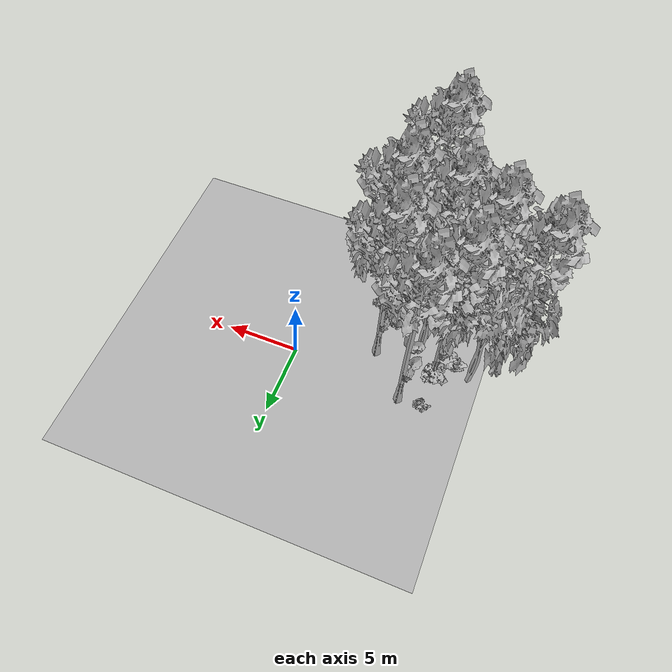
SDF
<sdf version="1.7">
 <world name="default">
  <model name="ground_plane">
   <static>1</static>
   <link name="link">
    <collision name="collision">
     <pose>-50 0 0 0 -0 0</pose>
     <geometry><plane><normal>0 0 1</normal><size>80 80</size></plane></geometry>
     <surface><contact><ode><min_depth>0.01</min_depth><max_vel>0</max_vel></ode></contact></surface>
    </collision>
    <visual name="grass">
     <cast_shadows>0</cast_shadows>
     <geometry>
      <mesh>
       <scale>0.46714285714285714 0.46714285714285714 0.1</scale>
       <uri>file://grass_plane/meshes/grass_plane.dae</uri>
      </mesh>
     </geometry>
    </visual>
   </link>
  </model>
  <model name="Tree 7">
   <static>1</static>
   <pose>-4.427250663453513 -5.980754278815311 0 1.57079 -0 0</pose>
   <link name="link">
    <collision name="collision">
     <geometry><mesh><scale>3.5 5 3.5</scale><uri>model://tree_9/meshes/tree_9.obj</uri></mesh></geometry>
    </collision>
    <visual name="visual">
     <geometry><mesh><scale>3.5 5 3.5</scale><uri>model://tree_9/meshes/tree_9.obj</uri></mesh></geometry>
    </visual>
   </link>
  </model>
  <model name="Tree 16">
   <static>1</static>
   <pose>-5.256447903502242 -5.490356725233795 0 1.57079 -0 0</pose>
   <link name="link">
    <collision name="collision">
     <geometry><mesh><scale>3.5 5 3.5</scale><uri>model://tree_2/meshes/tree_2.obj</uri></mesh></geometry>
    </collision>
    <visual name="visual">
     <geometry><mesh><scale>3.5 5 3.5</scale><uri>model://tree_2/meshes/tree_2.obj</uri></mesh></geometry>
    </visual>
   </link>
  </model>
  <model name="Tree 62">
   <static>1</static>
   <pose>-11.878132342739143 -2.3005812666337135 0 1.57079 -0 0</pose>
   <link name="link">
    <collision name="collision">
     <geometry><mesh><scale>3.5 5 3.5</scale><uri>model://tree_2/meshes/tree_2.obj</uri></mesh></geometry>
    </collision>
    <visual name="visual">
     <geometry><mesh><scale>3.5 5 3.5</scale><uri>model://tree_2/meshes/tree_2.obj</uri></mesh></geometry>
    </visual>
   </link>
  </model>
  <model name="Tree 73">
   <static>1</static>
   <pose>-9.478943195744403 -1.369140072293746 0 1.57079 -0 0</pose>
   <link name="link">
    <collision name="collision">
     <geometry><mesh><scale>3.5 5 3.5</scale><uri>model://tree_9/meshes/tree_9.obj</uri></mesh></geometry>
    </collision>
    <visual name="visual">
     <geometry><mesh><scale>3.5 5 3.5</scale><uri>model://tree_9/meshes/tree_9.obj</uri></mesh></geometry>
    </visual>
   </link>
  </model>
  <model name="Tree 166">
   <static>1</static>
   <pose>-10.228149432949753 -5.006016270019629 0 1.57079 -0 0</pose>
   <link name="link">
    <collision name="collision">
     <geometry><mesh><scale>3.5 5 3.5</scale><uri>model://tree_9/meshes/tree_9.obj</uri></mesh></geometry>
    </collision>
    <visual name="visual">
     <geometry><mesh><scale>3.5 5 3.5</scale><uri>model://tree_9/meshes/tree_9.obj</uri></mesh></geometry>
    </visual>
   </link>
  </model>
  <model name="Tree 221">
   <static>1</static>
   <pose>-13.35834579024992 -3.9304921222661093 0 1.57079 -0 0</pose>
   <link name="link">
    <collision name="collision">
     <geometry><mesh><scale>3.5 5 3.5</scale><uri>model://tree_9/meshes/tree_9.obj</uri></mesh></geometry>
    </collision>
    <visual name="visual">
     <geometry><mesh><scale>3.5 5 3.5</scale><uri>model://tree_9/meshes/tree_9.obj</uri></mesh></geometry>
    </visual>
   </link>
  </model>
  <model name="Tree 235">
   <static>1</static>
   <pose>-7.824362509094527 1.0120601404986544 0 1.57079 -0 0</pose>
   <link name="link">
    <collision name="collision">
     <geometry><mesh><scale>3.5 5 3.5</scale><uri>model://tree_9/meshes/tree_9.obj</uri></mesh></geometry>
    </collision>
    <visual name="visual">
     <geometry><mesh><scale>3.5 5 3.5</scale><uri>model://tree_9/meshes/tree_9.obj</uri></mesh></geometry>
    </visual>
   </link>
  </model>
  <model name="Tree 247">
   <static>1</static>
   <pose>-5.281650814542118 -1.921821378134105 0 1.57079 -0 0</pose>
   <link name="link">
    <collision name="collision">
     <geometry><mesh><scale>3.5 5 3.5</scale><uri>model://tree_9/meshes/tree_9.obj</uri></mesh></geometry>
    </collision>
    <visual name="visual">
     <geometry><mesh><scale>3.5 5 3.5</scale><uri>model://tree_9/meshes/tree_9.obj</uri></mesh></geometry>
    </visual>
   </link>
  </model>
  <model name="Tree 323">
   <static>1</static>
   <pose>-5.732596181707635 -11.236471091609587 0 1.57079 -0 0</pose>
   <link name="link">
    <collision name="collision">
     <geometry><mesh><scale>3.5 5 3.5</scale><uri>model://tree_9/meshes/tree_9.obj</uri></mesh></geometry>
    </collision>
    <visual name="visual">
     <geometry><mesh><scale>3.5 5 3.5</scale><uri>model://tree_9/meshes/tree_9.obj</uri></mesh></geometry>
    </visual>
   </link>
  </model>
  <model name="Tree 429">
   <static>1</static>
   <pose>-8.117793601955661 -3.190508060046625 0 1.57079 -0 0</pose>
   <link name="link">
    <collision name="collision">
     <geometry><mesh><scale>3.5 5 3.5</scale><uri>model://tree_2/meshes/tree_2.obj</uri></mesh></geometry>
    </collision>
    <visual name="visual">
     <geometry><mesh><scale>3.5 5 3.5</scale><uri>model://tree_2/meshes/tree_2.obj</uri></mesh></geometry>
    </visual>
   </link>
  </model>
  <model name="Tree 455">
   <static>1</static>
   <pose>-6.465772513158591 -9.074687895939277 0 1.57079 -0 0</pose>
   <link name="link">
    <collision name="collision">
     <geometry><mesh><scale>3.5 5 3.5</scale><uri>model://tree_2/meshes/tree_2.obj</uri></mesh></geometry>
    </collision>
    <visual name="visual">
     <geometry><mesh><scale>3.5 5 3.5</scale><uri>model://tree_2/meshes/tree_2.obj</uri></mesh></geometry>
    </visual>
   </link>
  </model>
  <model name="Tree 624">
   <static>1</static>
   <pose>-7.707575341597728 -5.809129788653216 0 1.57079 -0 0</pose>
   <link name="link">
    <collision name="collision">
     <geometry><mesh><scale>3.5 5 3.5</scale><uri>model://tree_9/meshes/tree_9.obj</uri></mesh></geometry>
    </collision>
    <visual name="visual">
     <geometry><mesh><scale>3.5 5 3.5</scale><uri>model://tree_9/meshes/tree_9.obj</uri></mesh></geometry>
    </visual>
   </link>
  </model>
  <model name="Bush 96">
   <static>1</static>
   <pose>-4.195050595715379 -5.986618700486744 0 1.57079 -0 0</pose>
   <link name="link">
    <collision name="collision">
     <geometry><mesh><scale>2 2 2</scale><uri>model://bush_2/meshes/bush_2.obj</uri></mesh></geometry>
     <surface><contact><collide_without_contact>false</collide_without_contact></contact></surface>
    </collision>
    <visual name="visual">
     <geometry><mesh><scale>2 2 2</scale><uri>model://bush_2/meshes/bush_2.obj</uri></mesh></geometry>
    </visual>
   </link>
  </model>
  <model name="Bush 99">
   <static>1</static>
   <pose>-12.676304408764203 -6.453361128359006 0 1.57079 -0 0</pose>
   <link name="link">
    <collision name="collision">
     <geometry><mesh><scale>2 2 2</scale><uri>model://bush_2/meshes/bush_2.obj</uri></mesh></geometry>
     <surface><contact><collide_without_contact>false</collide_without_contact></contact></surface>
    </collision>
    <visual name="visual">
     <geometry><mesh><scale>2 2 2</scale><uri>model://bush_2/meshes/bush_2.obj</uri></mesh></geometry>
    </visual>
   </link>
  </model>
  <model name="Bush 232">
   <static>1</static>
   <pose>-10.59928406244158 -2.553019612180492 0 1.57079 -0 0</pose>
   <link name="link">
    <collision name="collision">
     <geometry><mesh><scale>2 2 2</scale><uri>model://bush_0/meshes/bush_0.obj</uri></mesh></geometry>
     <surface><contact><collide_without_contact>false</collide_without_contact></contact></surface>
    </collision>
    <visual name="visual">
     <geometry><mesh><scale>2 2 2</scale><uri>model://bush_0/meshes/bush_0.obj</uri></mesh></geometry>
    </visual>
   </link>
  </model>
  <model name="Bush 237">
   <static>1</static>
   <pose>-9.878400222145778 -5.210732732472955 0 1.57079 -0 0</pose>
   <link name="link">
    <collision name="collision">
     <geometry><mesh><scale>2 2 2</scale><uri>model://bush_2/meshes/bush_2.obj</uri></mesh></geometry>
     <surface><contact><collide_without_contact>false</collide_without_contact></contact></surface>
    </collision>
    <visual name="visual">
     <geometry><mesh><scale>2 2 2</scale><uri>model://bush_2/meshes/bush_2.obj</uri></mesh></geometry>
    </visual>
   </link>
  </model>
  <model name="Bush 298">
   <static>1</static>
   <pose>-6.280540580521233 -7.425189872461075 0 1.57079 -0 0</pose>
   <link name="link">
    <collision name="collision">
     <geometry><mesh><scale>2 2 2</scale><uri>model://bush_2/meshes/bush_2.obj</uri></mesh></geometry>
     <surface><contact><collide_without_contact>false</collide_without_contact></contact></surface>
    </collision>
    <visual name="visual">
     <geometry><mesh><scale>2 2 2</scale><uri>model://bush_2/meshes/bush_2.obj</uri></mesh></geometry>
    </visual>
   </link>
  </model>
  <model name="Bush 373">
   <static>1</static>
   <pose>-5.8443499723510755 -4.756697664507712 0 1.57079 -0 0</pose>
   <link name="link">
    <collision name="collision">
     <geometry><mesh><scale>2 2 2</scale><uri>model://bush_2/meshes/bush_2.obj</uri></mesh></geometry>
     <surface><contact><collide_without_contact>false</collide_without_contact></contact></surface>
    </collision>
    <visual name="visual">
     <geometry><mesh><scale>2 2 2</scale><uri>model://bush_2/meshes/bush_2.obj</uri></mesh></geometry>
    </visual>
   </link>
  </model>
  <model name="Bush 417">
   <static>1</static>
   <pose>-9.410212553623044 0.810018239053214 0 1.57079 -0 0</pose>
   <link name="link">
    <collision name="collision">
     <geometry><mesh><scale>2 2 2</scale><uri>model://bush_2/meshes/bush_2.obj</uri></mesh></geometry>
     <surface><contact><collide_without_contact>false</collide_without_contact></contact></surface>
    </collision>
    <visual name="visual">
     <geometry><mesh><scale>2 2 2</scale><uri>model://bush_2/meshes/bush_2.obj</uri></mesh></geometry>
    </visual>
   </link>
  </model>
  <model name="Bush 481">
   <static>1</static>
   <pose>-9.570572329642808 -1.4978241279565339 0 1.57079 -0 0</pose>
   <link name="link">
    <collision name="collision">
     <geometry><mesh><scale>2 2 2</scale><uri>model://bush_1/meshes/bush_1.obj</uri></mesh></geometry>
     <surface><contact><collide_without_contact>false</collide_without_contact></contact></surface>
    </collision>
    <visual name="visual">
     <geometry><mesh><scale>2 2 2</scale><uri>model://bush_1/meshes/bush_1.obj</uri></mesh></geometry>
    </visual>
   </link>
  </model>
  <model name="Bush 517">
   <static>1</static>
   <pose>-5.379197162682416 -4.600444519264869 0 1.57079 -0 0</pose>
   <link name="link">
    <collision name="collision">
     <geometry><mesh><scale>2 2 2</scale><uri>model://bush_4/meshes/bush_4.obj</uri></mesh></geometry>
     <surface><contact><collide_without_contact>false</collide_without_contact></contact></surface>
    </collision>
    <visual name="visual">
     <geometry><mesh><scale>2 2 2</scale><uri>model://bush_4/meshes/bush_4.obj</uri></mesh></geometry>
    </visual>
   </link>
  </model>
  <model name="Bush 529">
   <static>1</static>
   <pose>-14.001157427321367 -7.637646633225202 0 1.57079 -0 0</pose>
   <link name="link">
    <collision name="collision">
     <geometry><mesh><scale>2 2 2</scale><uri>model://bush_5/meshes/bush_5.obj</uri></mesh></geometry>
     <surface><contact><collide_without_contact>false</collide_without_contact></contact></surface>
    </collision>
    <visual name="visual">
     <geometry><mesh><scale>2 2 2</scale><uri>model://bush_5/meshes/bush_5.obj</uri></mesh></geometry>
    </visual>
   </link>
  </model>
  <model name="Bush 571">
   <static>1</static>
   <pose>-5.797974007055544 -7.563480327089991 0 1.57079 -0 0</pose>
   <link name="link">
    <collision name="collision">
     <geometry><mesh><scale>2 2 2</scale><uri>model://bush_2/meshes/bush_2.obj</uri></mesh></geometry>
     <surface><contact><collide_without_contact>false</collide_without_contact></contact></surface>
    </collision>
    <visual name="visual">
     <geometry><mesh><scale>2 2 2</scale><uri>model://bush_2/meshes/bush_2.obj</uri></mesh></geometry>
    </visual>
   </link>
  </model>
 </world>
</sdf>
